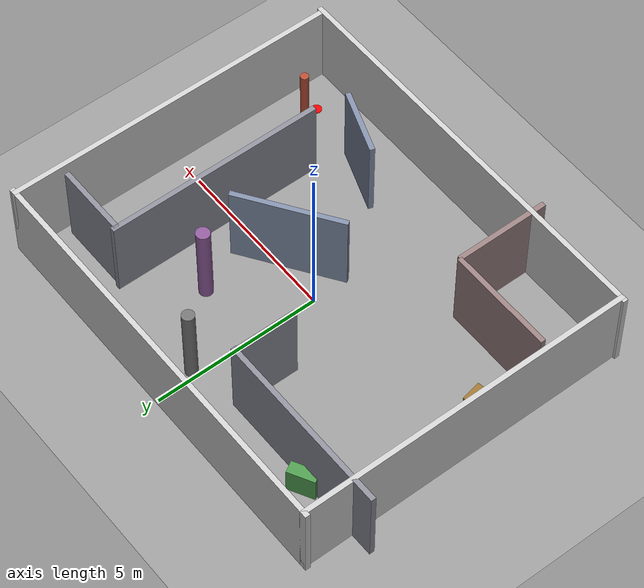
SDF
<?xml version="1.0" ?>
<sdf version="1.7">
  <world name="level3">

    <physics name="default_physics" default="0" type="ode">
      <max_step_size>0.001</max_step_size>
      <real_time_factor>1</real_time_factor>
      <real_time_update_rate>1000</real_time_update_rate>
    </physics>

    <gravity>0 0 -9.8</gravity>

    <light type="directional" name="sun">
      <cast_shadows>true</cast_shadows>
      <pose>0 0 10 0 0 0</pose>
      <diffuse>0.8 0.8 0.8 1</diffuse>
      <specular>0.2 0.2 0.2 1</specular>
      <direction>-0.5 0.1 -0.9</direction>
    </light>

    <!-- Ground plane -->
    <model name="ground_plane">
      <static>true</static>
      <link name="link">
        <collision name="collision">
          <geometry>
            <plane>
              <normal>0 0 1</normal>
              <size>30 30</size>
            </plane>
          </geometry>
          <surface>
            <friction>
              <ode>
                <mu>100</mu>
                <mu2>50</mu2>
              </ode>
            </friction>
          </surface>
        </collision>
        <visual name="visual">
          <geometry>
            <plane>
              <normal>0 0 1</normal>
              <size>30 30</size>
            </plane>
          </geometry>
          <material>
            <ambient>0.6 0.6 0.6 1</ambient>
            <diffuse>0.6 0.6 0.6 1</diffuse>
          </material>
        </visual>
      </link>
    </model>

    <!-- ===================== OUTER BOUNDARY ===================== -->
    <model name="wall_outer_north">
      <static>true</static>
      <pose>0 5 1.25 0 0 0</pose>
      <link name="link">
        <collision name="collision"><geometry><box><size>12.3 0.15 2.5</size></box></geometry></collision>
        <visual name="visual"><geometry><box><size>12.3 0.15 2.5</size></box></geometry>
          <material><ambient>0.8 0.8 0.8 1</ambient><diffuse>0.8 0.8 0.8 1</diffuse></material>
        </visual>
      </link>
    </model>

    <model name="wall_outer_south">
      <static>true</static>
      <pose>0 -5 1.25 0 0 0</pose>
      <link name="link">
        <collision name="collision"><geometry><box><size>12.3 0.15 2.5</size></box></geometry></collision>
        <visual name="visual"><geometry><box><size>12.3 0.15 2.5</size></box></geometry>
          <material><ambient>0.8 0.8 0.8 1</ambient><diffuse>0.8 0.8 0.8 1</diffuse></material>
        </visual>
      </link>
    </model>

    <model name="wall_outer_east">
      <static>true</static>
      <pose>6 0 1.25 0 0 1.5708</pose>
      <link name="link">
        <collision name="collision"><geometry><box><size>10.15 0.15 2.5</size></box></geometry></collision>
        <visual name="visual"><geometry><box><size>10.15 0.15 2.5</size></box></geometry>
          <material><ambient>0.8 0.8 0.8 1</ambient><diffuse>0.8 0.8 0.8 1</diffuse></material>
        </visual>
      </link>
    </model>

    <model name="wall_outer_west">
      <static>true</static>
      <pose>-6 0 1.25 0 0 1.5708</pose>
      <link name="link">
        <collision name="collision"><geometry><box><size>10.15 0.15 2.5</size></box></geometry></collision>
        <visual name="visual"><geometry><box><size>10.15 0.15 2.5</size></box></geometry>
          <material><ambient>0.8 0.8 0.8 1</ambient><diffuse>0.8 0.8 0.8 1</diffuse></material>
        </visual>
      </link>
    </model>

    <!-- ===================== INTERIOR MAZE WALLS =====================
         Irregular lengths & varying corridor widths on purpose. -->

    <!-- Long shelf wall splitting the NW corner, leaves a 1.5m gap
         near the west wall as the first corridor -->
    <model name="wall_int_01">
      <static>true</static>
      <pose>-4.0 3.5 1.25 0 0 0</pose>
      <link name="link">
        <collision name="collision"><geometry><box><size>5.5 0.15 2.5</size></box></geometry></collision>
        <visual name="visual"><geometry><box><size>5.5 0.15 2.5</size></box></geometry>
          <material><ambient>0.55 0.55 0.6 1</ambient><diffuse>0.55 0.55 0.6 1</diffuse></material>
        </visual>
      </link>
    </model>

    <!-- Drops down from wall_int_01, short stub, creates a dead-end nook
         (a distinctive, non-repeating feature) -->
    <model name="wall_int_02">
      <static>true</static>
      <pose>-1.35 2.6 1.25 0 0 1.5708</pose>
      <link name="link">
        <collision name="collision"><geometry><box><size>1.9 0.15 2.5</size></box></geometry></collision>
        <visual name="visual"><geometry><box><size>1.9 0.15 2.5</size></box></geometry>
          <material><ambient>0.55 0.55 0.6 1</ambient><diffuse>0.55 0.55 0.6 1</diffuse></material>
        </visual>
      </link>
    </model>

    <!-- Central diagonal wall (off-grid on purpose) forming an angled
         junction so two corridors never look identical -->
    <model name="wall_int_03_diagonal">
      <static>true</static>
      <pose>1.3 -0.2 1.25 0 0 0.6</pose>
      <link name="link">
        <collision name="collision"><geometry><box><size>3.2 0.15 2.5</size></box></geometry></collision>
        <visual name="visual"><geometry><box><size>3.2 0.15 2.5</size></box></geometry>
          <material><ambient>0.5 0.55 0.65 1</ambient><diffuse>0.5 0.55 0.65 1</diffuse></material>
        </visual>
      </link>
    </model>

    <!-- Long vertical spine wall, east-central, creates a wide corridor
         on one side (2.2m) and a narrow one on the other (1.2m) -->
    <model name="wall_int_04">
      <static>true</static>
      <pose>3.5 0.5 1.25 0 0 1.5708</pose>
      <link name="link">
        <collision name="collision"><geometry><box><size>6.5 0.15 2.5</size></box></geometry></collision>
        <visual name="visual"><geometry><box><size>6.5 0.15 2.5</size></box></geometry>
          <material><ambient>0.55 0.55 0.6 1</ambient><diffuse>0.55 0.55 0.6 1</diffuse></material>
        </visual>
      </link>
    </model>

    <!-- Short horizontal wall in SW area, offset (not centered) to
         avoid mirror symmetry with wall_int_01 -->
    <model name="wall_int_05">
      <static>true</static>
      <pose>-4.2 -2.6 1.25 0 0 0</pose>
      <link name="link">
        <collision name="collision"><geometry><box><size>3.2 0.15 2.5</size></box></geometry></collision>
        <visual name="visual"><geometry><box><size>3.2 0.15 2.5</size></box></geometry>
          <material><ambient>0.6 0.5 0.5 1</ambient><diffuse>0.6 0.5 0.5 1</diffuse></material>
        </visual>
      </link>
    </model>

    <!-- Vertical connector wall closing off a small side room in the
         south, with an intentionally uneven doorway offset -->
    <model name="wall_int_06">
      <static>true</static>
      <pose>-2.6 -4 1.25 0 0 1.5708</pose>
      <link name="link">
        <collision name="collision"><geometry><box><size>2.8 0.15 2.5</size></box></geometry></collision>
        <visual name="visual"><geometry><box><size>2.8 0.15 2.5</size></box></geometry>
          <material><ambient>0.6 0.5 0.5 1</ambient><diffuse>0.6 0.5 0.5 1</diffuse></material>
        </visual>
      </link>
    </model>

    <!-- Short wall near NE corner, breaks up the otherwise open corner
         so it isn't feature-less -->
    <model name="wall_int_07">
      <static>true</static>
      <pose>4.6 3.6 1.25 0 0 0</pose>
      <link name="link">
        <collision name="collision"><geometry><box><size>2.2 0.15 2.5</size></box></geometry></collision>
        <visual name="visual"><geometry><box><size>2.2 0.15 2.5</size></box></geometry>
          <material><ambient>0.55 0.55 0.6 1</ambient><diffuse>0.55 0.55 0.6 1</diffuse></material>
        </visual>
      </link>
    </model>

    <!-- Angled stub near south-east, second off-grid feature so the
         two non-90-degree corners look different from one another -->
    <model name="wall_int_08_diagonal">
      <static>true</static>
      <pose>2.4 -3.4 1.25 0 0 -0.35</pose>
      <link name="link">
        <collision name="collision"><geometry><box><size>2.0 0.15 2.5</size></box></geometry></collision>
        <visual name="visual"><geometry><box><size>2.0 0.15 2.5</size></box></geometry>
          <material><ambient>0.5 0.55 0.65 1</ambient><diffuse>0.5 0.55 0.65 1</diffuse></material>
        </visual>
      </link>
    </model>

    <model name="pillar_01">
      <static>true</static>
      <pose>2.0 2.0 1.25 0 0 0</pose>
      <link name="link">
        <collision name="collision"><geometry><cylinder><radius>0.2</radius><length>2.5</length></cylinder></geometry></collision>
        <visual name="visual"><geometry><cylinder><radius>0.2</radius><length>2.5</length></cylinder></geometry>
          <material><ambient>0.55 0.35 0.6 1</ambient><diffuse>0.55 0.35 0.6 1</diffuse></material>
        </visual>
      </link>
    </model>

    <model name="pillar_02_thin">
      <static>true</static>
      <pose>4.5 -3.2 1.25 0 0 0</pose>
      <link name="link">
        <collision name="collision"><geometry><cylinder><radius>0.12</radius><length>2.5</length></cylinder></geometry></collision>
        <visual name="visual"><geometry><cylinder><radius>0.12</radius><length>2.5</length></cylinder></geometry>
          <material><ambient>0.7 0.3 0.2 1</ambient><diffuse>0.7 0.3 0.2 1</diffuse></material>
        </visual>
      </link>
    </model>

    <model name="angled_box_landmark">
      <static>true</static>
      <pose>-4.3 3.7 0.4 0 0 0.5</pose>
      <link name="link">
        <collision name="collision"><geometry><box><size>0.8 0.35 0.8</size></box></geometry></collision>
        <visual name="visual"><geometry><box><size>0.8 0.35 0.8</size></box></geometry>
          <material><ambient>0.3 0.6 0.3 1</ambient><diffuse>0.3 0.6 0.3 1</diffuse></material>
        </visual>
      </link>
    </model>

    <model name="crate_landmark">
      <static>true</static>
      <pose>-5.2 -1.2 0.3 0 0 0.2</pose>
      <link name="link">
        <collision name="collision"><geometry><box><size>0.6 0.6 0.6</size></box></geometry></collision>
        <visual name="visual"><geometry><box><size>0.6 0.6 0.6</size></box></geometry>
          <material><ambient>0.6 0.45 0.2 1</ambient><diffuse>0.6 0.45 0.2 1</diffuse></material>
        </visual>
      </link>
    </model>

    <model name="pillar_03">
      <static>true</static>
      <pose>0.2 3.8 1.25 0 0 0</pose>
      <link name="link">
        <collision name="collision"><geometry><cylinder><radius>0.18</radius><length>2.5</length></cylinder></geometry></collision>
        <visual name="visual"><geometry><cylinder><radius>0.18</radius><length>2.5</length></cylinder></geometry>
          <material><ambient>0.45 0.45 0.45 1</ambient><diffuse>0.45 0.45 0.45 1</diffuse></material>
        </visual>
      </link>
    </model>

    <light type="point" name="cluster_light">
      <pose>4.9 3.0 2.3 0 0 0</pose>
      <diffuse>0.7 0.7 0.7 1</diffuse>
      <specular>0.15 0.15 0.15 1</specular>
      <attenuation>
        <range>8</range>
        <constant>1.0</constant>
        <linear>0.15</linear>
        <quadratic>0.03</quadratic>
      </attenuation>
      <cast_shadows>false</cast_shadows>
    </light>

    <!-- Medium sphere, red -->
    <model name="rock_01">
      <static>true</static>
      <pose>4.55 2.95 0.22 0 0 0</pose>
      <link name="link">
        <collision name="collision"><geometry><sphere><radius>0.22</radius></sphere></geometry></collision>
        <visual name="visual"><geometry><sphere><radius>0.22</radius></sphere></geometry>
          <material>
            <ambient>0.85 0.1 0.1 1</ambient>
            <diffuse>0.85 0.1 0.1 1</diffuse>
            <specular>0.05 0.05 0.05 1</specular>
          </material>
        </visual>
      </link>
    </model>

    <!-- Smallest sphere, green -->
    <model name="rock_02">
      <static>true</static>
      <pose>4.9 3.05 0.17 0 0 0</pose>
      <link name="link">
        <collision name="collision"><geometry><sphere><radius>0.17</radius></sphere></geometry></collision>
        <visual name="visual"><geometry><sphere><radius>0.17</radius></sphere></geometry>
          <material>
            <ambient>0.1 0.75 0.15 1</ambient>
            <diffuse>0.1 0.75 0.15 1</diffuse>
            <specular>0.05 0.05 0.05 1</specular>
          </material>
        </visual>
      </link>
    </model>

    <!-- Largest sphere, yellow: this is the one the camera task
         should end up identifying -->
    <model name="rock_03">
      <static>true</static>
      <pose>5.25 2.95 0.28 0 0 0</pose>
      <link name="link">
        <collision name="collision"><geometry><sphere><radius>0.28</radius></sphere></geometry></collision>
        <visual name="visual"><geometry><sphere><radius>0.28</radius></sphere></geometry>
          <material>
            <ambient>0.85 0.75 0.05 1</ambient>
            <diffuse>0.85 0.75 0.05 1</diffuse>
            <specular>0.05 0.05 0.05 1</specular>
          </material>
        </visual>
      </link>
    </model>

    <model name="waypoint_marker_A">
      <static>true</static>
      <pose>-5 4 0.05 0 0 0</pose>
      <link name="link">
        <visual name="visual"><geometry><cylinder><radius>0.15</radius><length>0.02</length></cylinder></geometry>
          <material><ambient>1 0 0 1</ambient><diffuse>1 0 0 1</diffuse></material>
        </visual>
      </link>
    </model>

    <model name="waypoint_marker_B">
      <static>true</static>
      <pose>5 -4 0.05 0 0 0</pose>
      <link name="link">
        <visual name="visual"><geometry><cylinder><radius>0.15</radius><length>0.02</length></cylinder></geometry>
          <material><ambient>1 0 0 1</ambient><diffuse>1 0 0 1</diffuse></material>
        </visual>
      </link>
    </model>

    <!-- Robot spawn point: place your robot model / SDF include here,
         e.g. near the west wall in the open starting area -->

  </world>
</sdf>
